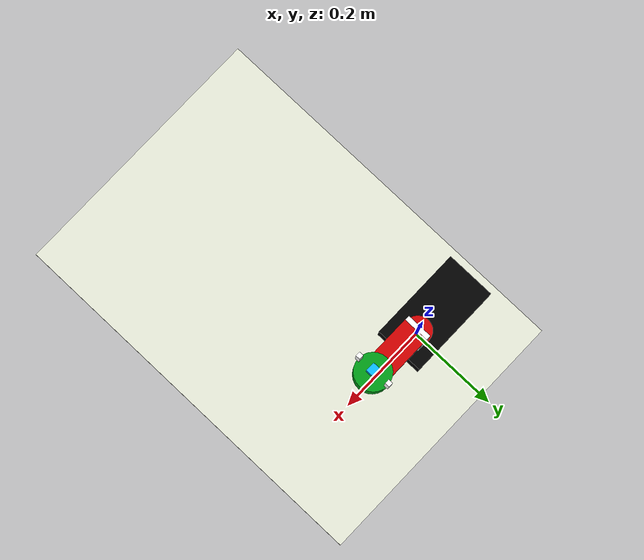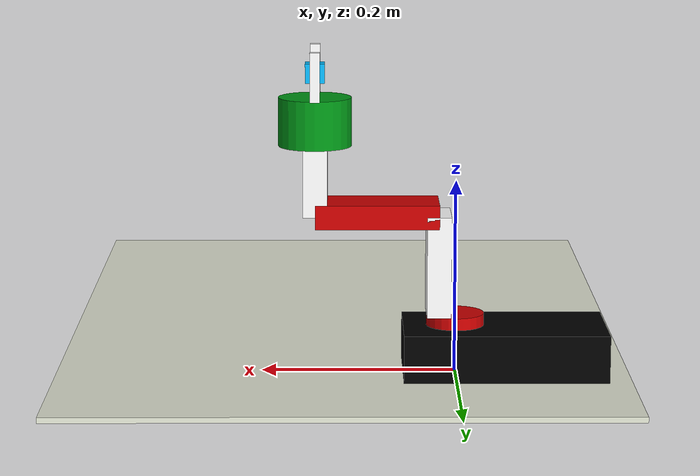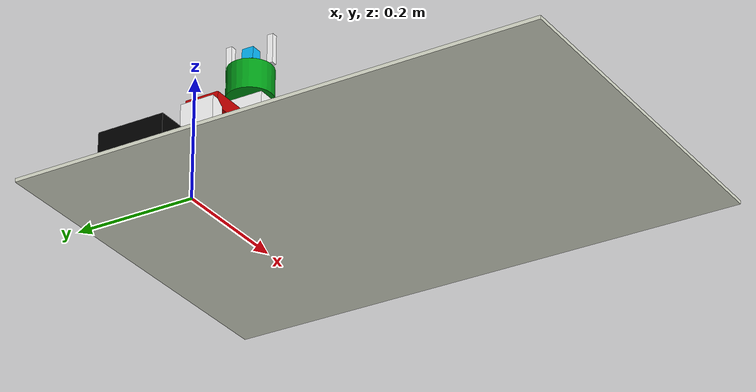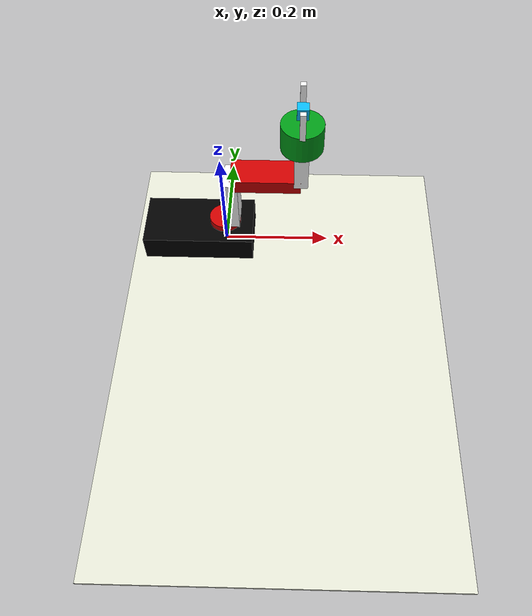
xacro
<?xml version="1.0"?>

<robot name="myarm1" xmlns:xacro="http://www.ros.org/wiki/xacro">

  <!-- Include materials -->

    <material name="Black">
        <color rgba="0.0 0.0 0.0 1.0"/>
    </material>

    <material name="Red">
        <color rgba="0.8 0.0 0.0 1.0"/>
    </material>

    <material name="White">
        <color rgba="1.0 1.0 1.0 1.0"/>
    </material>

    <material name="Blue">
        <color rgba="0.0275 0.7216 0.9765 1.0"/>
    </material>

    <material name="Green">
        <color rgba="0.0 0.5961 0.0863 1.0"/>
    </material>

    <material name="Gray">
        <color rgba="0.8784 0.8902 0.8235 1.0"/>
    </material>

  <xacro:property name="deg_to_rad" value="0.01745329251994329577"/>

  <!-- Constants -->
  <xacro:property name="M_SCALE" value="0.001 0.001 0.001"/>
  <xacro:property name="M_PI" value="3.1415926"/>

  <!-- Shoulder pan link properties -->
  <xacro:property name="shoulder_pan_width" value="0.03" />
  <xacro:property name="shoulder_pan_len" value="0.0125" />

  <!-- Shoulder pitch link properties -->
  <xacro:property name="shoulder_pitch_len" value="0.025" />
  <xacro:property name="shoulder_pitch_width" value="0.105" />
  <xacro:property name="shoulder_pitch_height" value="0.057" />

  <!-- Elbow pitch link properties -->
  <xacro:property name="elbow_pitch_len" value="0.025" />
  <xacro:property name="elbow_pitch_width" value="0.127" />
  <xacro:property name="elbow_pitch_height" value="0.057" />

  <!-- wrist pitch link properties -->
  <xacro:property name="wrist_pitch_len" value="0.07" />
  <xacro:property name="wrist_pitch_width" value="0.025" />
  <xacro:property name="wrist_pitch_height" value="0.057" />

  <!-- Gripper roll link properties -->
  <xacro:property name="gripper_roll_width" value="0.0375" />
  <xacro:property name="gripper_roll_len" value="0.05" />

  <!-- Left gripper -->
  <xacro:property name="left_gripper_len" value="0.01" />
  <xacro:property name="left_gripper_width" value="0.01" />
  <xacro:property name="left_gripper_height" value="0.05" />

  <!-- Right gripper -->
  <xacro:property name="right_gripper_len" value="0.01" />
  <xacro:property name="right_gripper_width" value="0.01" />
  <xacro:property name="right_gripper_height" value="0.05" />

  <!-- Right gripper -->
  <xacro:property name="grasp_frame_len" value="0.02" />
  <xacro:property name="grasp_frame_width" value="0.02" />
  <xacro:property name="grasp_frame_height" value="0.02" />

    <!-- Inertial matrix -->
  <xacro:macro name="inertial_matrix" params="mass">
      <inertial>
          <mass value="${mass}" />
          <inertia ixx="1.0" ixy="0.0" ixz="0.0" iyy="0.5" iyz="0.0" izz="1.0" />
      </inertial>
  </xacro:macro>

    <!-- Transmissions for ROS Control -->
    <xacro:macro name="transmission_block" params="joint_name">
        <transmission name="tran1">
            <type>transmission_interface/SimpleTransmission</type>
            <joint name="${joint_name}">
                <hardwareInterface>hardware_interface/PositionJointInterface</hardwareInterface>
            </joint>
            <actuator name="motor1">
                <hardwareInterface>hardware_interface/PositionJointInterface</hardwareInterface>
                <mechanicalReduction>1</mechanicalReduction>
            </actuator>
        </transmission>
    </xacro:macro>

    <xacro:transmission_block joint_name="shoulder_pan_joint"/>
    <xacro:transmission_block joint_name="shoulder_pitch_joint"/>
    <xacro:transmission_block joint_name="elbow_pitch_joint"/>
    <xacro:transmission_block joint_name="wrist_pitch_joint"/>
    <xacro:transmission_block joint_name="gripper_roll_joint"/>
    <xacro:transmission_block joint_name="finger_joint1"/>
    <xacro:transmission_block joint_name="grasping_frame_joint"/>

 <link name="dummy">
 </link>>
 <joint name="dummy_joint" type="fixed">
   <parent link="dummy"/>
   <child link="base_link"/>

 </joint>

<!-- BOTTOM FIXED LINK
This link is the base of the arm in which arm is placed

-->

  <joint name="bottom_joint" type="fixed">
    <origin xyz="0 0 0" rpy="0 0 0" />
    <parent link="base_link"/>
    <child link="bottom_link"/>
  </joint>

  <link name="bottom_link">

    <visual>
      <origin xyz=" 0.1165 -0.245 -0.003"  rpy="0 0 0"/>
      <geometry>

	       <box size="0.593 0.85 0.006" />

      </geometry>
      <material name="Gray" />
    </visual>

    <collision>
      <origin xyz=" 0.1165 -0.245 -0.003"  rpy="0 0 0"/>
      <geometry>
	       <box size="0.593 0.85 0.006" />
      </geometry>
      </collision>>

  </link>

  <!-- BASE LINK -->
  <link name="base_link">

    <visual>
      <origin xyz="-0.051 0 0.0246" rpy="0 0 0" /> <!-- rotate PI/2 -->
      <geometry>

	       <box size="0.21 0.11 0.0492" />

      </geometry>
      <material name="Black" />
    </visual>

    <collision>
      <origin xyz="-0.051 0 0.0246" rpy="0 0 0" /> <!-- rotate PI/2 -->
      <geometry>

	       <box size="0.21 0.11 0.0492" />

      </geometry>
      </collision>>
	<!--xacro:inertial_matrix mass="1"/-->

  </link>

  <gazebo reference="base_link">
    <material>Gazebo/White</material>
  </gazebo>

  <joint name="shoulder_pan_joint" type="revolute">
    <parent link="base_link"/>
    <child link="shoulder_pan_link"/>
    <origin xyz="0 0 0.0492" rpy="0 0 0" />
    <axis xyz="0 0 1" />
    <limit effort="300" velocity="1" lower="-2.61799387799" upper="1.98394848567"/>
    <dynamics damping="50" friction="1"/>
  </joint>

  <!-- SHOULDER PAN LINK -->
  <link name="shoulder_pan_link" >

    <visual>
      <origin xyz="0 0 0.00625" rpy="0 0 0" />
      <geometry>

            <cylinder radius="0.03" length="${shoulder_pan_len}"/>

      </geometry>
      <material name="Red" />
    </visual>

    <collision>
      <origin xyz="0 0 0.00625" rpy="0 0 0" />
      <geometry>
            <cylinder radius="0.03" length="${shoulder_pan_len}"/>
      </geometry>
    </collision>
	<xacro:inertial_matrix mass="1"/>
  </link>

  <gazebo reference="shoulder_pan_link">
    <material>Gazebo/Red</material>
  </gazebo>

  <joint name="shoulder_pitch_joint" type="revolute">
    <parent link="shoulder_pan_link"/>
    <child link="shoulder_pitch_link"/>
    <origin xyz="0.0175 0 0.0125" rpy="1.570795 0 0" />
    <axis xyz="0 0 1" />
    <limit effort="300" velocity="1" lower="-1.19962513147" upper="1.89994105047" />
    <dynamics damping="50" friction="1"/>
  </joint>

  <!-- SHOULDER PITCH LINK -->
  <link name="shoulder_pitch_link" >

    <visual>
      <origin xyz="0 0.0525 0" rpy="0 0 0" />
      <geometry>

           <box size="${shoulder_pitch_len} ${shoulder_pitch_width} ${shoulder_pitch_height}" />

      </geometry>
      <material name="White" />
    </visual>

    <collision>
      <origin xyz="0 0.0525 0" rpy="0 0 0" />
      <geometry>
           <box size="${shoulder_pitch_len} ${shoulder_pitch_width} ${shoulder_pitch_height}" />
      </geometry>
    </collision>
	<xacro:inertial_matrix mass="1"/>
  </link>

  <gazebo reference="shoulder_pitch_link">
    <material>Gazebo/White</material>
  </gazebo>

  <joint name="elbow_pitch_joint" type="revolute">
    <parent link="shoulder_pitch_link"/>
    <child link="elbow_pitch_link"/>
    <origin xyz="0 0.105 0" rpy="0 0 0" />
    <axis xyz="0 0 1" />
    <limit effort="300" velocity="1" lower="-1.5953400194" upper="1.93281579274" />
    <dynamics damping="50" friction="1"/>
  </joint>

  <!-- ELBOW PITCH LINK -->
  <link name="elbow_pitch_link" >

    <visual>
      <origin xyz="0.0635 0 0" rpy="0  0 -${M_PI/2}" />
      <geometry>

       <box size="${elbow_pitch_len} ${elbow_pitch_width} ${elbow_pitch_height}" />

      </geometry>
      <material name="Red" />
    </visual>

    <collision>
      <origin xyz="0.0635 0 0" rpy="0  0 -${M_PI/2}" />
      <geometry>
       <box size="${elbow_pitch_len} ${elbow_pitch_width} ${elbow_pitch_height}" />
      </geometry>
    </collision>
	<xacro:inertial_matrix mass="1"/>
  </link>

  <gazebo reference="elbow_pitch_link">
    <material>Gazebo/Red</material>
  </gazebo>

  <joint name="wrist_pitch_joint" type="revolute">
    <parent link="elbow_pitch_link"/>
    <child link="wrist_pitch_link"/>
    <origin xyz="0.127 0 0.0" rpy="0 0 0" />
    <axis xyz="0 0 1" />
    <limit effort="300" velocity="1" lower="-3.14159265359" upper="1.98394848567" />
    <dynamics damping="50" friction="1"/>
  </joint>

  <!-- WRIST PITCH LINK -->
  <link name="wrist_pitch_link">

    <visual>
      <origin xyz="0 0.035 0" rpy="0 0 ${M_PI/2}" />
      <geometry>

           <box size="${wrist_pitch_len} ${wrist_pitch_width} ${wrist_pitch_height}" />

      </geometry>
      <material name="White" />
    </visual>

    <collision>
      <origin xyz="0 0.035 0" rpy="0 0 ${M_PI/2}" />
      <geometry>
          <box size="${wrist_pitch_len} ${wrist_pitch_width} ${wrist_pitch_height}" />
      </geometry>
    </collision>
	<xacro:inertial_matrix mass="1"/>
  </link>

  <gazebo reference="wrist_pitch_link">
    <material>Gazebo/White</material>
  </gazebo>

  <joint name="gripper_roll_joint" type="revolute">
    <parent link="wrist_pitch_link"/>
    <child link="gripper_roll_link"/>
    <origin xyz="0 0.07 0" rpy="-${M_PI/2} 0 0" />
    <axis xyz="0 0 1" />
    <limit effort="300" velocity="1" lower="-2.61799387799" upper="2.6128806087" />
    <dynamics damping="50" friction="1"/>
  </joint>

  <!-- GRIPPER ROLL LINK -->
  <link name="gripper_roll_link">

    <visual>
      <origin xyz="0 0 0.025" rpy="0 0 0" />
      <geometry>

            <cylinder radius="${gripper_roll_width}" length="${gripper_roll_len}"/>

      </geometry>
      <material name="Green" />
    </visual>

    <collision>
      <origin xyz="0 0 0.025" rpy="0 0 0" />
      <geometry>
            <cylinder radius="${gripper_roll_width}" length="${gripper_roll_len}"/>
      </geometry>
    </collision>
	<xacro:inertial_matrix mass="1"/>

  </link>

  <gazebo reference="gripper_roll_link">
    <material>Gazebo/Red</material>
  </gazebo>

  <joint name="finger_joint1" type="prismatic">
    <parent link="gripper_roll_link"/>
    <child link="gripper_finger_link1"/>
    <origin xyz="0.0 0 0.05" />
    <axis xyz="0 1 0" />
      <limit effort="100" lower="0" upper="0.03" velocity="1.0"/>

      <safety_controller k_position="20"
                         k_velocity="20"
                         soft_lower_limit="${-0.15 }"
                         soft_upper_limit="${ 0.0 }"/>

    <dynamics damping="50" friction="1"/>
  </joint>

  <!-- LEFT GRIPPER AFT LINK -->
  <link name="gripper_finger_link1">

     <visual>
      <origin xyz="0 0.037 0.025"/>
      <geometry>

           <box size="${left_gripper_len} ${left_gripper_width} ${left_gripper_height}" />

      </geometry>
      <material name="White" />
    </visual>
	<!--xacro:inertial_matrix mass="1"/-->
  </link>

  <gazebo reference="l_gripper_aft_link">
    <material>Gazebo/White</material>
  </gazebo>

<!-- Joint between Wrist roll and finger 2 -->

  <joint name="finger_joint2" type="prismatic">
    <parent link="gripper_roll_link"/>
    <child link="gripper_finger_link2"/>
    <origin xyz="0.0 0 0.05" />
    <axis xyz="0 1 0" />
    <limit effort="1" lower="-0.03" upper="0" velocity="1.0"/>

    <dynamics damping="50" friction="1"/>
  </joint>

  <!-- RIGHT GRIPPER AFT LINK -->

  <link name="gripper_finger_link2">
    <visual>
      <origin xyz="0 -0.037 0.025"/>
      <geometry>

          <box size="${right_gripper_len} ${right_gripper_width} ${right_gripper_height}" />

      </geometry>
      <material name="White" />
    </visual>
	<xacro:inertial_matrix mass="1"/>
  </link>

  <gazebo reference="r_gripper_aft_link">
    <material>Gazebo/White</material>
  </gazebo>

    <!-- Grasping frame -->
    <link name="grasping_frame">

      <inertial>
        <origin xyz="0 0 0" rpy="0 0 0"/>
        <mass value="0.0001"/>
        <cuboid_inertia mass="0.0001" x="0.001" y="0.001" z="0.001"/>
        <inertia  ixx="1.0" ixy="0.0"  ixz="0.0"  iyy="100.0"  iyz="0.0"  izz="1.0" />
      </inertial>

    <visual>
      <origin xyz="0 0 0"/>
      <geometry>
          <box size="${grasp_frame_len} ${grasp_frame_width} ${grasp_frame_height}" />
      </geometry>
      <material name="Blue" />
    </visual>

    </link>

    <joint name="grasping_frame_joint" type="fixed">
      <parent link="gripper_roll_link"/>
      <child link="grasping_frame"/>
      <origin xyz="0.0 0 0.075" rpy="0 0 0"/>
    </joint>

  <!--xacro:include filename="$(find mastering_ros_robot_description_pkg)/urdf/sensors/xtion_pro_live.urdf.xacro"/-->

    <!-- ros_control plugin -->
    <gazebo>
        <plugin name="gazebo_ros_control" filename="libgazebo_ros_control.so">
            <robotNamespace>/myarm1</robotNamespace>
        </plugin>
    </gazebo>

  <!-- Define RGB-D sensor -->

</robot>
